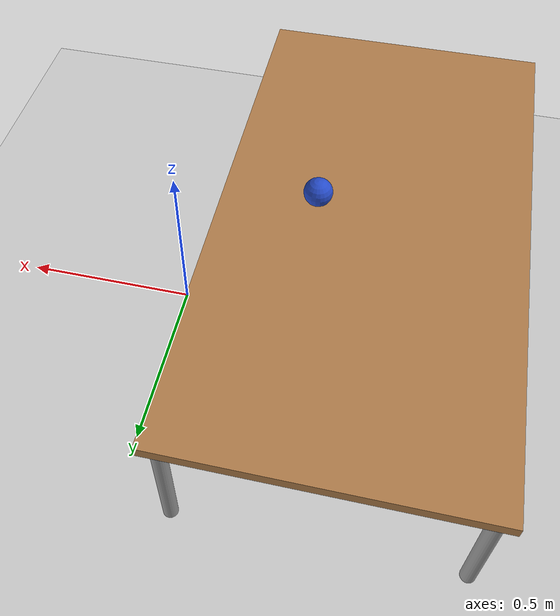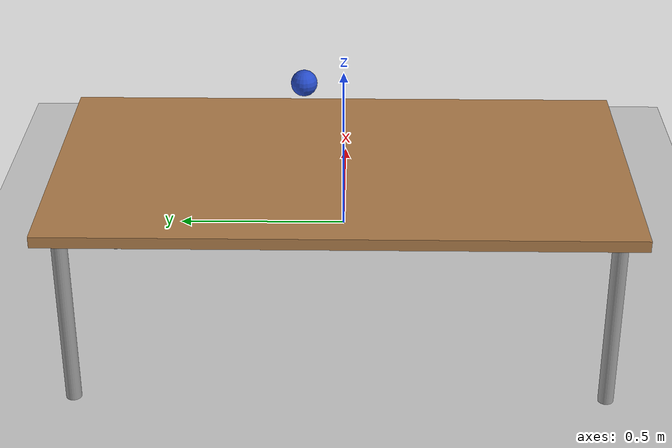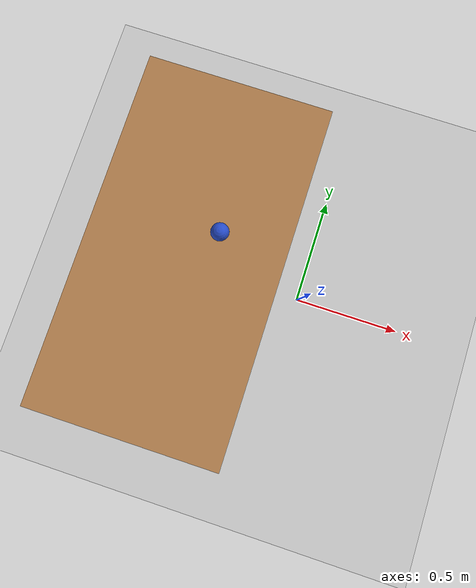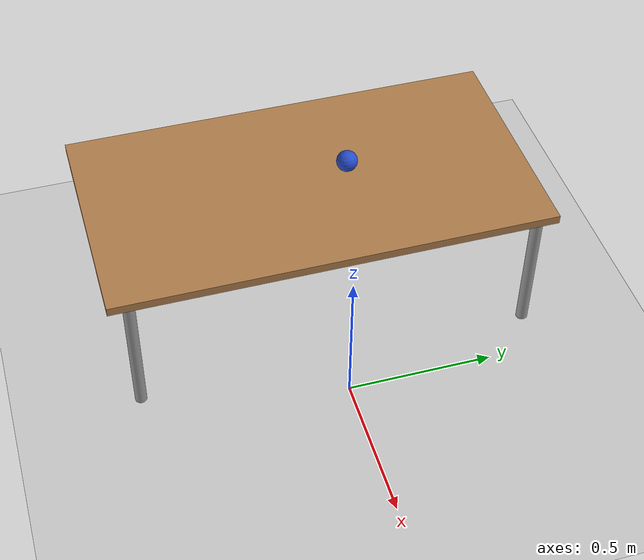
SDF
<sdf version="1.7">
 <world name="default">
  <plugin name="mover" filename="libassignment_grasp-it-world.so"/>
  <include><uri>model://sun</uri></include>
  <light name="user_point_light_0" type="point">
   <pose>0.197302 -0.215077 1 0 -0 0</pose>
   <diffuse>0.5 0.5 0.5 1</diffuse>
   <specular>0.1 0.1 0.1 1</specular>
   <attenuation>
    <range>20</range>
    <constant>0.5</constant>
    <linear>0.01</linear>
    <quadratic>0.001</quadratic>
   </attenuation>
   <cast_shadows>0</cast_shadows>
   <direction>0 0 -1</direction>
  </light>
  <include><uri>model://ground_plane</uri></include>
  <include><uri>model://assignment_grasp-it-table</uri><pose>-0.530772 0 0 0 0 -1.57</pose></include>
  <include><uri>model://assignment_grasp-it-ball</uri><pose>-0.4 0.1 0.65 0 0 0</pose></include>
 </world>
</sdf>

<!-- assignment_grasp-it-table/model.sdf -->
<sdf version="1.7">
  <model name="assignment_grasp-it-table">
    <static>true</static>
    <link name="table_root_link">
      <collision name="table_surface_collision">
	<pose>0 0 0.465 0 0 0</pose>
	<geometry>
          <box>
            <size>1.5 0.8 0.03</size>
          </box>
	</geometry>
	<surface>
          <friction>
            <ode>
              <mu>0.1</mu>
              <mu2>0.1</mu2>
            </ode>
          </friction>
	</surface>
      </collision>
      <visual name="table_surface_visual">
	<pose>0 0 0.465 0 0 0</pose>
	<geometry>
          <box>
            <size>1.5 0.8 0.03</size>
          </box>
	</geometry>
	<material>
          <script>
            <uri>file://media/materials/scripts/gazebo.material</uri>
            <name>Gazebo/Wood</name>
          </script>
	</material>
      </visual>
      <collision name="front_left_leg">
        <pose>0.68 0.38 0.225 0 0 0</pose>
        <geometry>
          <cylinder>
            <radius>0.02</radius>
            <length>0.45</length>
          </cylinder>
        </geometry>
      </collision>
      <visual name="front_left_leg">
        <pose>0.68 0.38 0.225 0 0 0</pose>
        <geometry>
          <cylinder>
            <radius>0.02</radius>
            <length>0.45</length>
          </cylinder>
        </geometry>
        <material>
          <script>
            <uri>file://media/materials/scripts/gazebo.material</uri>
            <name>Gazebo/Grey</name>
          </script>
        </material>
      </visual>
      <collision name="front_right_leg">
        <pose>0.68 -0.38 0.225 0 0 0</pose>
        <geometry>
          <cylinder>
            <radius>0.02</radius>
            <length>0.45</length>
          </cylinder>
        </geometry>
      </collision>
      <visual name="front_right_leg">
        <pose>0.68 -0.38 0.225 0 0 0</pose>
        <geometry>
          <cylinder>
            <radius>0.02</radius>
            <length>0.45</length>
          </cylinder>
        </geometry>
        <material>
          <script>
            <uri>file://media/materials/scripts/gazebo.material</uri>
            <name>Gazebo/Grey</name>
          </script>
        </material>
      </visual>
      <collision name="back_right_leg">
        <pose>-0.68 -0.38 0.225 0 0 0</pose>
        <geometry>
          <cylinder>
            <radius>0.02</radius>
            <length>0.45</length>
          </cylinder>
        </geometry>
      </collision>
      <visual name="back_right_leg">
        <pose>-0.68 -0.38 0.225 0 0 0</pose>
        <geometry>
          <cylinder>
            <radius>0.02</radius>
            <length>0.45</length>
          </cylinder>
        </geometry>
        <material>
          <script>
            <uri>file://media/materials/scripts/gazebo.material</uri>
            <name>Gazebo/Grey</name>
          </script>
        </material>
      </visual>
      <collision name="back_left_leg">
        <pose>-0.68 0.38 0.225 0 0 0</pose>
        <geometry>
          <cylinder>
            <radius>0.02</radius>
            <length>0.45</length>
          </cylinder>
        </geometry>
      </collision>
      <visual name="back_left_leg">
        <pose>-0.68 0.38 0.225 0 0 0</pose>
        <geometry>
          <cylinder>
            <radius>0.02</radius>
            <length>0.45</length>
          </cylinder>
        </geometry>
        <material>
          <script>
            <uri>file://media/materials/scripts/gazebo.material</uri>
            <name>Gazebo/Grey</name>
          </script>
        </material>
      </visual>
    </link>
  </model>
</sdf>

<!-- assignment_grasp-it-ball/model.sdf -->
<sdf version="1.7">
  <model name="assignment_grasp-it-ball">
    <static>false</static>
    <link name="link">
        <visual name="visual">
            <geometry>
                <sphere>
                    <radius> 0.035 </radius>
                </sphere>
            </geometry>
            <material>
                <script>
                    <uri>file://media/materials/scripts/gazebo.material</uri>
                    <name>Gazebo/Blue</name>
                </script>
            </material>
        </visual>
        <collision name="collision">
            <geometry>
                <sphere>
                    <radius> 0.035 </radius>
                </sphere>
            </geometry>
        </collision>
        <inertial>
            <mass>0.2</mass>
            <inertia>
              <ixx>0.000098</ixx>
              <ixy>0.0</ixy>
              <ixz>0.0</ixz>
              <iyy>0.000098</iyy>
              <iyz>0.0</iyz>
              <izz>0.000098</izz>
            </inertia>
        </inertial>
    </link>
  </model>
</sdf>
